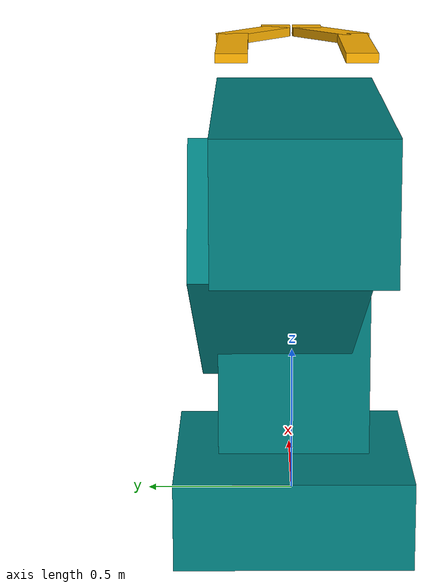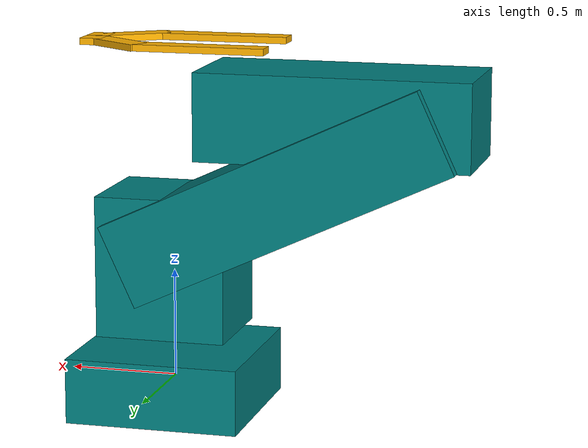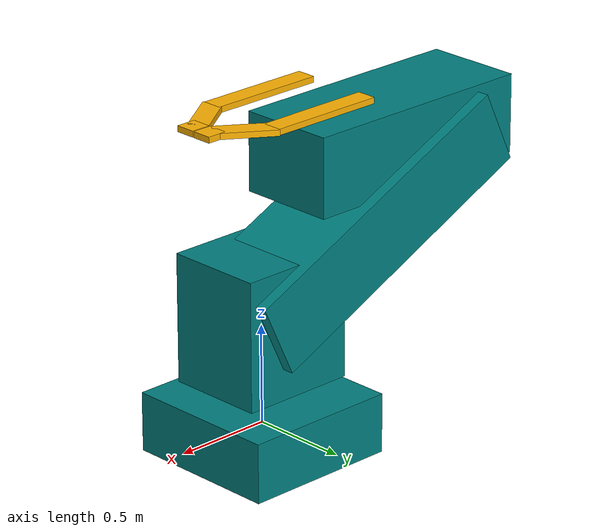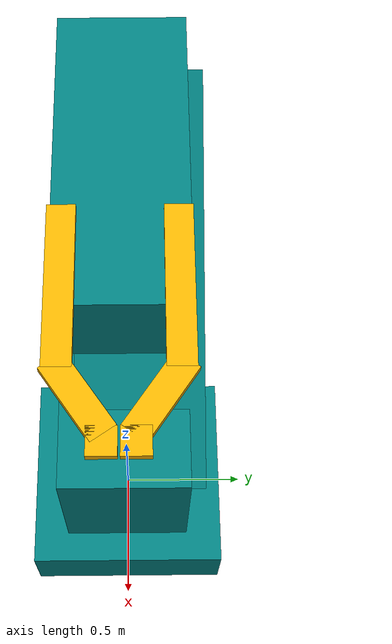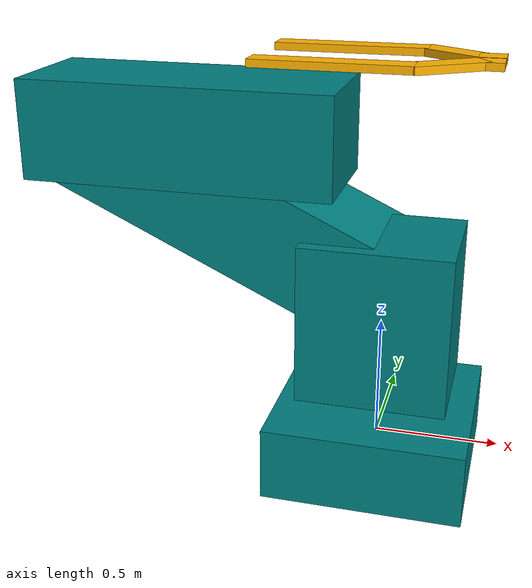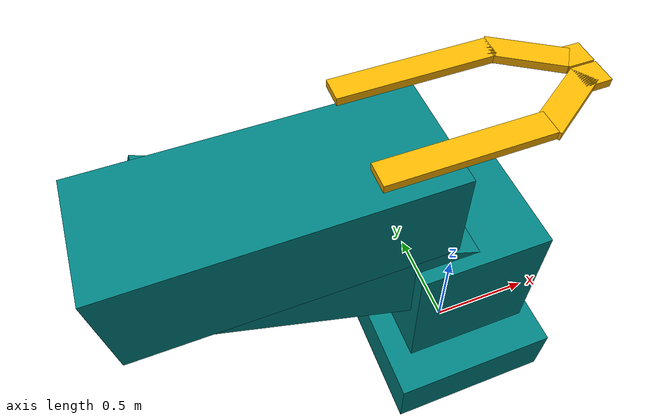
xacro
<?xml version="1.0"?>
<robot xmlns:xacro="http://www.ros.org/wiki/xacro" name="cobra">
    <xacro:arg name="initial_positions_file" default="initial_positions.yaml" />

    <!-- Import cobra urdf file -->
    <xacro:include filename="$(find cobrotic)/urdf/cobra.urdf" />

    <!-- Import control_xacro -->
    <xacro:include filename="cobra.ros2_control.xacro" />

    <xacro:cobra_ros2_control name="FakeSystem" initial_positions_file="$(arg initial_positions_file)"/>

</robot>

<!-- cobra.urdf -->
<robot name="cobra">

  <!-- Mateirals -->
  <material name="blue">
    <color rgba="0 0.5 0.5 1"/>
  </material>

  <material name="yellow">
    <color rgba="1 0.7 0 1"/>
  </material>

  <!-- Base -->
  <link name="bottom">
    <visual>
      <origin xyz="0 0 0" rpy="0 0 0"/>
      <geometry>
        <box size="0.8 0.8 0.3"/>
      </geometry>
      <material name="blue">
      </material>
    </visual>
    <collision>
      <origin xyz="0 0 0" rpy="0 0 0"/>
      <geometry>
        <box size="0.8 0.8 0.3"/>
      </geometry>
    </collision>
    <inertial>
      <mass value="5.0"/>
      <origin xyz="0 0 0" rpy="0 0 0"/>
      <inertia ixx="0.1" iyy="0.1" izz="0.1" ixy="0" ixz="0" iyz="0"/>
    </inertial>
  </link>

  <!-- Pedestal -->
  <link name="pedestal">
    <visual>
      <origin xyz="0 0 0.3" rpy="0 0 0"/>
      <geometry>
        <box size="0.6 0.5 0.65"/>
      </geometry>
      <material name="blue">
      </material>
    </visual>
    <collision>
      <origin xyz="0 0 0.3" rpy="0 0 0"/>
      <geometry>
        <box size="0.6 0.5 0.65"/>
      </geometry>
    </collision>
    <inertial>
      <mass value="3.0"/>
      <origin xyz="0 0 0.325" rpy="0 0 0"/>
      <inertia ixx="0.05" iyy="0.05" izz="0.05" ixy="0" ixz="0" iyz="0"/>
    </inertial>
  </link>

  <joint name="bottom_to_pedestal" type="revolute">
    <axis xyz="0 0 1"/>
    <limit effort="1000.0" lower="0.0" upper="3.14" velocity="1.0"/>
    <parent link="bottom"/>
    <child link="pedestal"/>
    <origin xyz="0 0 0.25" rpy="0 0 0"/>
  </joint>

  <!-- Arm -->
  <link name="arm">
    <visual>
      <origin xyz="0 0.06 0.6" rpy="0 0 0"/>
      <geometry>
        <box size="0.4 0.5 1.6"/>
      </geometry>
      <material name="blue">
      </material>
    </visual>
    <collision>
      <origin xyz="0 0.06 0.6" rpy="0 0 0"/>
      <geometry>
        <box size="0.4 0.5 1.6"/>
      </geometry>
    </collision>
    <inertial>
      <mass value="4.0"/>
      <origin xyz="0 0.06 0.6" rpy="0 0 0"/>
      <inertia ixx="0.08" iyy="0.08" izz="0.08" ixy="0" ixz="0" iyz="0"/>
    </inertial>
  </link>

  <joint name="pedestal_to_arm" type="revolute">

    <axis xyz="0 1 0"/>
    <limit effort="1000.0" lower="0.0" upper="2.18166157" velocity="1.0"/>
    <parent link="pedestal"/>
    <child link="arm"/>
    <origin rpy="0 -1.13446401 0" xyz="0 0 0.4"/>
  </joint>

  <!-- Forearm -->
  <link name="forearm">
    <visual>
      <origin xyz="-0.1 0 0.3" rpy="0 0 0"/>
      <geometry>
        <box size="0.4 0.5 1.25"/>
      </geometry>
      <material name="blue">
      </material>
    </visual>
    <collision>
      <origin xyz="-0.1 0 0.3" rpy="0 0 0"/>
      <geometry>
        <box size="0.4 0.5 1.25"/>
      </geometry>
    </collision>
    <inertial>
      <mass value="3.0"/>
      <origin xyz="-0.1 0 0.3" rpy="0 0 0"/>
      <inertia ixx="0.05" iyy="0.05" izz="0.05" ixy="0" ixz="0" iyz="0"/>
    </inertial>
  </link>

  <joint name="arm_to_forearm" type="revolute">
    <axis xyz="0 -1 0"/>
    <limit effort="1000.0" lower="0.0" upper="2.70526034" velocity="1.0"/>
    <parent link="arm"/>
    <child link="forearm"/>
    <origin rpy="0 2.70526034 0" xyz="0 0 1.2"/>
  </joint>

  <!-- Platform -->
  <link name="platform">
    <visual>
      <origin xyz="0 0 0" rpy="0 0 0"/>
      <geometry>
        <box size="0.03 0.5 0.5"/>
      </geometry>
      <material name="blue">
      </material>
    </visual>
    <collision>
      <origin xyz="0 0 0" rpy="0 0 0"/>
      <geometry>
        <box size="0.03 0.5 0.5"/>
      </geometry>
    </collision>
    <inertial>
      <mass value="0.5"/>
      <origin xyz="0 0 0.25" rpy="0 0 0"/>
      <inertia ixx="0.01" iyy="0.01" izz="0.01" ixy="0" ixz="0" iyz="0"/>
    </inertial>
  </link>

  <joint name="forearm_to_platform" type="fixed">
    <parent link="forearm"/>
    <child link="platform"/>
    <origin xyz="-0.2 0 0.6" rpy="0 0 0"/>
  </joint>

  <!-- Left Gripper -->
  <link name="left_gripper">
    <visual>
      <origin xyz="-0.1 -0.05 0.15" rpy="0 0 0"/>
      <geometry>
        <box size="0.03 0.1 0.6"/>
      </geometry>
      <material name="yellow">
      </material>
    </visual>
    <collision>
      <geometry>
        <box size="0.03 0.1 0.3"/>
      </geometry>
    </collision>
    <inertial>
      <mass value="0.1"/>
      <origin xyz="0 0 0" rpy="0 0 0"/>
      <inertia ixx="0.001" iyy="0.001" izz="0.001" ixy="0" ixz="0" iyz="0"/>
    </inertial>
  </link>

  <joint name="left_gripper_joint" type="revolute">
    <axis xyz="1 0 0"/>
    <limit effort="1000" lower="0.0" upper="0.523599" velocity="1.0"/>
    <parent link="platform"/>
    <child link="left_gripper"/>
    <origin xyz="-0.1 -0.15 0.15" rpy="0 0 0"/>
  </joint>

    <!-- Left Tip of Gripper -->
  <link name="left_tip_gripper">
    <visual>
      <origin xyz="0 0 0.12" rpy="0 0 0"/>
      <geometry>
        <box size="0.03 0.1 0.3"/>
      </geometry>
      <material name="yellow">
      </material>
    </visual>
    <collision>
      <geometry>
        <box size="0.03 0.1 0.3"/>
      </geometry>
    </collision>
    <inertial>
      <mass value="0.1"/>
      <origin xyz="0 0 0" rpy="0 0 0"/>
      <inertia ixx="0.001" iyy="0.001" izz="0.001" ixy="0" ixz="0" iyz="0"/>
    </inertial>
  </link>

  <joint name="left_tip_gripper_joint" type="fixed">
    <axis xyz="1 0 0"/>
    <parent link="left_gripper"/>
    <child link="left_tip_gripper"/>
    <origin xyz="-0.1 -0.05 0.45" rpy="-0.6 0 0"/>
  </joint>

      <!-- Left point of Tip -->
  <link name="left_point_tip_gripper">
    <visual>
      <origin xyz="0 0.005 0.04" rpy="0 0 0"/>
      <geometry>
        <box size="0.03 0.1 0.1"/>
      </geometry>
      <material name="yellow">
      </material>
    </visual>
    <collision>
      <geometry>
        <box size="0.03 0.1 0.1"/>
      </geometry>
    </collision>
    <inertial>
      <mass value="0.1"/>
      <origin xyz="0 0 0" rpy="0 0 0"/>
      <inertia ixx="0.001" iyy="0.001" izz="0.001" ixy="0" ixz="0" iyz="0"/>
    </inertial>
  </link>

  <joint name="left_point_tip_gripper_joint" type="fixed">
    <axis xyz="1 0 0"/>
    <parent link="left_tip_gripper"/>
    <child link="left_point_tip_gripper"/>
    <origin xyz="0 0 0.25" rpy="0.6 0 0"/>
  </joint>

  <!-- Right Gripper -->
  <link name="right_gripper">
    <visual>
      <origin xyz="-0.1 0.05 0.15" rpy="0 0 0"/>
      <geometry>
        <box size="0.03 0.1 0.6"/>
      </geometry>
      <material name="yellow">
      </material>
    </visual>
    <collision>
      <geometry>
        <box size="0.03 0.1 0.3"/>
      </geometry>
    </collision>
    <inertial>
      <mass value="0.1"/>
      <origin xyz="0 0 0" rpy="0 0 0"/>
      <inertia ixx="0.001" iyy="0.001" izz="0.001" ixy="0" ixz="0" iyz="0"/>
    </inertial>
  </link>

  <joint name="right_gripper_joint" type="revolute">
    <axis xyz="-1 0 0"/>
    <limit effort="1000" lower="0.0" upper="0.523599" velocity="1.0"/>
    <parent link="platform"/>
    <child link="right_gripper"/>
    <origin xyz="-0.1 0.15 0.15" rpy="0 0 0"/>
  </joint>

    <!-- Right Tip of Gripper -->
  <link name="right_tip_gripper">
    <visual>
      <origin xyz="0 0 0.12" rpy="0 0 0"/>
      <geometry>
        <box size="0.03 0.1 0.3"/>
      </geometry>
      <material name="yellow">
      </material>
    </visual>
    <collision>
      <geometry>
        <box size="0.03 0.1 0.3"/>
      </geometry>
    </collision>
    <inertial>
      <mass value="0.1"/>
      <origin xyz="0 0 0" rpy="0 0 0"/>
      <inertia ixx="0.001" iyy="0.001" izz="0.001" ixy="0" ixz="0" iyz="0"/>
    </inertial>
  </link>

  <joint name="right_tip_gripper_joint" type="fixed">
    <axis xyz="1 0 0"/>
    <parent link="right_gripper"/>
    <child link="right_tip_gripper"/>
    <origin xyz="-0.1 0.05 0.45" rpy="0.6  0 0"/>
  </joint>

      <!-- Right point of Tip -->
  <link name="right_point_tip_gripper">
    <visual>
      <origin xyz="0 -0.005 0.04" rpy="0 0 0"/>
      <geometry>
        <box size="0.03 0.1 0.1"/>
      </geometry>
      <material name="yellow">
      </material>
    </visual>
    <collision>
      <geometry>
        <box size="0.03 0.1 0.1"/>
      </geometry>
    </collision>
    <inertial>
      <mass value="0.1"/>
      <origin xyz="0 0 0" rpy="0 0 0"/>
      <inertia ixx="0.001" iyy="0.001" izz="0.001" ixy="0" ixz="0" iyz="0"/>
    </inertial>
  </link>

  <joint name="right_point_tip_gripper_joint" type="fixed">
    <axis xyz="1 0 0"/>
    <parent link="right_tip_gripper"/>
    <child link="right_point_tip_gripper"/>
    <origin xyz="0 0 0.25" rpy="-0.6 0 0"/>
  </joint>

  <!-- Gazebo ROS2 Control Plugin -->
  <gazebo>
    <plugin name="gazebo_ros2_control" filename="libgazebo_ros2_control.so"/>
  </gazebo>

</robot>
